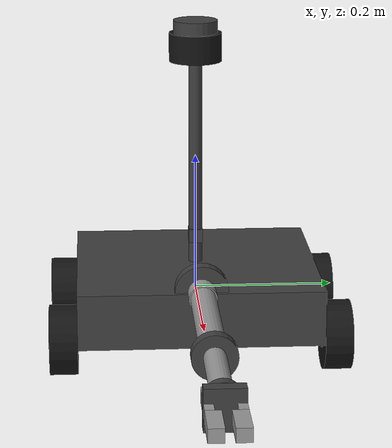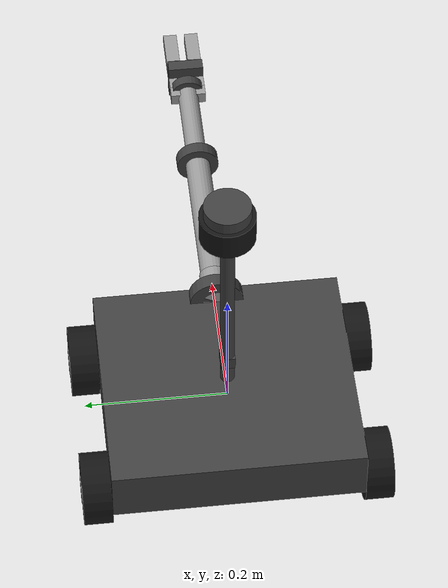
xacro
<?xml version="1.0"?>
<robot name="orion"
       xmlns:xacro="http://www.ros.org/wiki/xacro"
       xmlns:gz="http://gazebosim.org/schema">
  <xacro:arg name="controllers_file" default="config/ros2_controllers.yaml"/>

<!--CONSTANTS-->
  <xacro:property name="base_x"    value="0.320"/>
  <xacro:property name="base_y"    value="0.350"/>
  <xacro:property name="base_z"    value="0.080"/>
  <xacro:property name="base_mass" value="3.5"/>

  <xacro:property name="wheel_radius" value="0.050"/>
  <xacro:property name="wheel_width"  value="0.040"/>
  <xacro:property name="wheel_mass"   value="0.3"/>
  <xacro:property name="wheel_x_off"  value="0.112"/>
  <xacro:property name="wheel_y_off"  value="0.195"/>
  <xacro:property name="wheel_z_off"  value="${-base_z/2.0}"/>
  <xacro:property name="wheel_mu"     value="1.0"/>
  <xacro:property name="wheel_mu2"    value="0.001"/>

  <xacro:property name="mast_r"  value="0.010"/>
  <xacro:property name="mast_h"  value="0.300"/>
  <xacro:property name="mast_x"  value="0.000"/>
  <xacro:property name="mast_y"  value="0.000"/>
  <xacro:property name="lidar_r" value="0.038"/>
  <xacro:property name="lidar_h" value="0.041"/>
  <xacro:property name="lidar_m" value="0.185"/>
  <xacro:property name="imu_xyz" value="0.02"/>
  <xacro:property name="shoulder_mount_x" value="${base_x/2.0 - r_shoulder - 0.006}"/>
  <xacro:property name="shoulder_mount_z" value="${base_z/2.0}"/>

  <xacro:property name="shoulder_h"   value="0.050"/>
  <xacro:property name="upper_arm_l"  value="0.220"/>
  <xacro:property name="forearm_l"    value="0.145"/>
  <xacro:property name="gripper_l"    value="0.055"/>
  <xacro:property name="gripper_tcp"  value="0.050"/>

  <xacro:property name="r_shoulder"  value="0.020"/>
  <xacro:property name="r_upper_arm" value="0.018"/>
  <xacro:property name="r_forearm"   value="0.015"/>
  <xacro:property name="r_gripper"   value="0.012"/>

  <xacro:property name="m_shoulder"  value="0.300"/>
  <xacro:property name="m_upper_arm" value="0.308"/>
  <xacro:property name="m_forearm"   value="0.199"/>
  <xacro:property name="m_gripper"   value="0.120"/>

  <xacro:property name="shoulder_lo"  value="-1.58"/>
  <xacro:property name="shoulder_hi"  value="0.79"/>
  <xacro:property name="elbow_lo"     value="-0.25"/>
  <xacro:property name="elbow_hi"     value=" 1.57"/>
  <xacro:property name="wrist_lo"     value=" 0.00"/>
  <xacro:property name="wrist_hi"     value=" 2.70"/>

  <xacro:property name="gp_lo"  value="-1.57"/>
  <xacro:property name="gp_hi"  value=" 1.57"/>
  <xacro:property name="gy_lo"  value="-1.57"/>
  <xacro:property name="gy_hi"  value=" 1.57"/>
  <xacro:property name="gr_lo"  value="-1.57"/>
  <xacro:property name="gr_hi"  value=" 1.57"/>

  <xacro:property name="shoulder_damp"  value="0.08"/>  <xacro:property name="shoulder_fric" value="0.10"/>
  <xacro:property name="elbow_damp"     value="0.06"/>  <xacro:property name="elbow_fric"    value="0.08"/>
  <xacro:property name="wrist_damp"     value="0.04"/>  <xacro:property name="wrist_fric"    value="0.06"/>
  <xacro:property name="gripper_damp"   value="0.02"/>  <xacro:property name="gripper_fric"  value="0.03"/>

  <xacro:property name="arm_effort"    value="5.0"/>
  <xacro:property name="arm_vel"       value="1.0"/>
  <xacro:property name="gripper_effort" value="5.0"/>
  <xacro:property name="gripper_vel"    value="0.10"/>
  <xacro:property name="gripper_stroke" value="0.025"/>

  <xacro:property name="finger_w"         value="0.012"/>
  <xacro:property name="finger_h"         value="0.018"/>
  <xacro:property name="finger_jaw_l"     value="0.055"/>
  <xacro:property name="finger_jaw_w"     value="0.020"/>
  <xacro:property name="finger_bracket_l" value="0.018"/>
  <xacro:property name="finger_bracket_w" value="0.028"/>

<!--colours-->
  <material name="grey">      <color rgba="0.60 0.60 0.60 1.0"/></material>
  <material name="dark_grey"> <color rgba="0.25 0.25 0.25 1.0"/></material>
  <material name="black">     <color rgba="0.08 0.08 0.08 1.0"/></material>
  <material name="white">     <color rgba="0.90 0.90 0.90 1.0"/></material>
  <material name="red">       <color rgba="0.80 0.10 0.10 1.0"/></material>
  <material name="blue">      <color rgba="0.10 0.10 0.80 1.0"/></material>
  <material name="green">     <color rgba="0.10 0.70 0.10 1.0"/></material>
  <material name="orange">    <color rgba="1.00 0.45 0.00 1.0"/></material>
  <material name="yellow">    <color rgba="1.00 0.85 0.00 1.0"/></material>

  <xacro:macro name="gz_material" params="link gz_mat">
    <gazebo reference="${link}">
      <material>${gz_mat}</material>
    </gazebo>
  </xacro:macro>

<!--inertia macro-->
  <xacro:macro name="inertia_cyl_z" params="m r l">
    <inertial>
      <mass value="${m}"/>
      <origin xyz="0 0 ${l/2.0}" rpy="0 0 0"/>
      <inertia
        ixx="${(1.0/12.0)*m*(3.0*r*r + l*l)}"
        iyy="${(1.0/12.0)*m*(3.0*r*r + l*l)}"
        izz="${0.5*m*r*r}"
        ixy="0" ixz="0" iyz="0"/>
    </inertial>
  </xacro:macro>

  <xacro:macro name="inertia_cyl_x" params="m r l">
    <inertial>
      <mass value="${m}"/>
      <origin xyz="${l/2.0} 0 0" rpy="0 0 0"/>
      <inertia
        ixx="${0.5*m*r*r}"
        iyy="${(1.0/12.0)*m*(3.0*r*r + l*l)}"
        izz="${(1.0/12.0)*m*(3.0*r*r + l*l)}"
        ixy="0" ixz="0" iyz="0"/>
    </inertial>
  </xacro:macro>

  <xacro:macro name="inertia_box" params="m x y z ox oy oz">
    <inertial>
      <mass value="${m}"/>
      <origin xyz="${ox} ${oy} ${oz}" rpy="0 0 0"/>
      <inertia
        ixx="${(1.0/12.0)*m*(y*y+z*z)}"
        iyy="${(1.0/12.0)*m*(x*x+z*z)}"
        izz="${(1.0/12.0)*m*(x*x+y*y)}"
        ixy="0" ixz="0" iyz="0"/>
    </inertial>
  </xacro:macro>

  <xacro:macro name="inertia_point" params="m">
    <inertial>
      <mass value="${m}"/>
      <origin xyz="0 0 0" rpy="0 0 0"/>
      <inertia ixx="1e-6" iyy="1e-6" izz="1e-6" ixy="0" ixz="0" iyz="0"/>
    </inertial>
  </xacro:macro>

<!--base macros-->
  <xacro:macro name="base">
    <link name="base_link">

      <!-- outer shell -->
      <visual>
        <origin xyz="0 0 0" rpy="0 0 0"/>
        <geometry><box size="${base_x} ${base_y} ${base_z}"/></geometry>
        <material name="dark_grey"/>
      </visual>
      <!-- upper plate -->
      <visual>
        <origin xyz="0 0 ${base_z/2.0 - 0.004}" rpy="0 0 0"/>
        <geometry><box size="${base_x - 0.006} ${base_y - 0.006} 0.006"/></geometry>
        <material name="grey"/>
      </visual>
      <!-- battery layer -->
      <visual>
        <origin xyz="-0.050 0 ${-base_z/2.0 + 0.0175}" rpy="0 0 0"/>
        <geometry><box size="${base_x*0.55} ${base_y - 0.030} 0.033"/></geometry>
        <material name="black"/>
      </visual>
      <!-- motor driver layer -->
      <visual>
        <origin xyz="-0.04 0 ${-base_z/2.0 + 0.048}" rpy="0 0 0"/>
        <geometry><box size="${base_x*0.45} ${base_y - 0.030} 0.018"/></geometry>
        <material name="dark_grey"/>
      </visual>
      <!-- power layer -->
      <visual>
        <origin xyz="0 0 ${-base_z/2.0 + 0.068}" rpy="0 0 0"/>
        <geometry><box size="${base_x - 0.020} ${base_y - 0.030} 0.016"/></geometry>
        <material name="dark_grey"/>
      </visual>
      <!--pi pcb-->
      <visual>
        <origin xyz="-0.07 0.03 ${-base_z/2.0 + 0.060}" rpy="0 0 0"/>
        <geometry><box size="0.085 0.056 0.004"/></geometry>
        <material name="green"/>
      </visual>

      <collision>
        <origin xyz="0 0 0" rpy="0 0 0"/>
        <geometry><box size="${base_x} ${base_y} ${base_z}"/></geometry>
      </collision>

      <inertial>
        <mass value="${base_mass}"/>
        <origin xyz="-0.056 0 0" rpy="0 0 0"/>
        <inertia
          ixx="${(1.0/12.0)*base_mass*(base_y*base_y + base_z*base_z)}"
          iyy="${(1.0/12.0)*base_mass*(base_x*base_x + base_z*base_z)}"
          izz="${(1.0/12.0)*base_mass*(base_x*base_x + base_y*base_y)}"
          ixy="0" ixz="0" iyz="0"/>
      </inertial>
    </link>

    <gazebo reference="base_link">
      <collision>
        <surface>
          <friction><ode><mu>0.0</mu><mu2>0.0</mu2></ode></friction>
        </surface>
      </collision>
    </gazebo>

    <gazebo>
      <plugin filename="libgz_ros2_control-system.so"
              name="gz_ros2_control::GazeboSimROS2ControlPlugin">
        <parameters>$(arg controllers_file)</parameters>
        <robot_param>robot_description</robot_param>
        <robot_param_node>robot_state_publisher</robot_param_node>
      </plugin>
    </gazebo>
  </xacro:macro>

<!--mecanum wheel macro-->
  <xacro:macro name="mecanum_wheel" params="name x_sign y_sign fdir1_y mu_val">
    <link name="${name}_wheel_link">
      <visual>
        <origin xyz="0 0 0" rpy="${pi/2} 0 0"/>
        <geometry><cylinder radius="${wheel_radius}" length="${wheel_width}"/></geometry>
        <material name="black"/>
      </visual>
      <visual>
        <origin xyz="0 0 0" rpy="${pi/2} 0 0"/>
        <geometry><cylinder radius="${wheel_radius*0.38}" length="${wheel_width+0.002}"/></geometry>
        <material name="grey"/>
      </visual>
      <collision>
        <origin xyz="0 0 0" rpy="0 0 0"/>
        <geometry><sphere radius="${wheel_radius}"/></geometry>
      </collision>
      <inertial>
        <mass value="${wheel_mass}"/>
        <origin xyz="0 0 0"/>
        <inertia
          ixx="${(1.0/12.0)*wheel_mass*(3.0*wheel_radius*wheel_radius + wheel_width*wheel_width)}"
          iyy="${0.5*wheel_mass*wheel_radius*wheel_radius}"
          izz="${(1.0/12.0)*wheel_mass*(3.0*wheel_radius*wheel_radius + wheel_width*wheel_width)}"
          ixy="0" ixz="0" iyz="0"/>
      </inertial>
    </link>

    <joint name="${name}_wheel_joint" type="continuous">
      <parent link="base_link"/>
      <child  link="${name}_wheel_link"/>
      <origin xyz="${x_sign*wheel_x_off} ${y_sign*wheel_y_off} ${wheel_z_off}" rpy="0 0 0"/>
      <axis xyz="0 1 0"/>
      <dynamics damping="0.01" friction="0.01"/>
    </joint>

    <gazebo reference="${name}_wheel_link">
      <collision>
        <surface>
          <friction>
            <ode>
              <mu>${mu_val}</mu>
              <mu2>${wheel_mu2}</mu2>
              <fdir1 gz:expressed_in="base_link">1 ${fdir1_y} 0</fdir1>
            </ode>
          </friction>
          <contact>
            <ode>
              <kp>500000.0</kp>
              <kd>100.0</kd>
              <min_depth>0.001</min_depth>
              <max_vel>0.1</max_vel>
            </ode>
          </contact>
        </surface>
      </collision>
    </gazebo>
  </xacro:macro>

  <xacro:macro name="wheels">
    <xacro:mecanum_wheel name="front_left"  x_sign=" 1" y_sign=" 1" fdir1_y=" 1" mu_val="1.0"/>
    <xacro:mecanum_wheel name="front_right" x_sign=" 1" y_sign="-1" fdir1_y="-1" mu_val="1.0"/>
    <xacro:mecanum_wheel name="rear_left"   x_sign="-1" y_sign=" 1" fdir1_y="-1" mu_val="1.0"/>
    <xacro:mecanum_wheel name="rear_right"  x_sign="-1" y_sign="-1" fdir1_y=" 1" mu_val="1.0"/>
  </xacro:macro>

  <!--sensor macros-->
  <xacro:macro name="sensors">

    <!-- lidar mast -->
    <link name="lidar_mast_link">
      <visual>
        <origin xyz="0 0 ${mast_h/2.0}" rpy="0 0 0"/>
        <geometry><cylinder radius="${mast_r}" length="${mast_h}"/></geometry>
        <material name="dark_grey"/>
      </visual>
      <collision>
        <origin xyz="0 0 ${mast_h/2.0}" rpy="0 0 0"/>
        <geometry><cylinder radius="${mast_r}" length="${mast_h}"/></geometry>
      </collision>
      <inertial>
        <mass value="0.080"/>
        <origin xyz="0 0 ${mast_h/2.0}" rpy="0 0 0"/>
        <inertia
          ixx="${(1.0/12.0)*0.080*(3.0*mast_r*mast_r + mast_h*mast_h)}"
          iyy="${(1.0/12.0)*0.080*(3.0*mast_r*mast_r + mast_h*mast_h)}"
          izz="${0.5*0.080*mast_r*mast_r}"
          ixy="0" ixz="0" iyz="0"/>
      </inertial>
    </link>

    <joint name="lidar_mast_joint" type="fixed">
      <parent link="base_link"/>
      <child  link="lidar_mast_link"/>
      <origin xyz="${mast_x} ${mast_y} ${base_z/2.0}" rpy="0 0 0"/>
    </joint>

    <!--lidar-->
    <link name="lidar_link">
      <visual>
        <origin xyz="0 0 ${lidar_h/2.0}" rpy="0 0 0"/>
        <geometry><cylinder radius="${lidar_r}" length="${lidar_h}"/></geometry>
        <material name="black"/>
      </visual>
      <visual>
        <origin xyz="0 0 ${lidar_h + 0.009}" rpy="0 0 0"/>
        <geometry><cylinder radius="${lidar_r - 0.006}" length="0.018"/></geometry>
        <material name="dark_grey"/>
      </visual>
      <visual>
        <origin xyz="${lidar_r - 0.003} 0 ${lidar_h/2.0}" rpy="0 0 0"/>
        <geometry><box size="0.004 0.012 ${lidar_h*0.5}"/></geometry>
        <material name="blue"/>
      </visual>
      <collision>
        <origin xyz="0 0 ${lidar_h/2.0}" rpy="0 0 0"/>
        <geometry><cylinder radius="${lidar_r}" length="${lidar_h}"/></geometry>
      </collision>
      <inertial>
        <mass value="${lidar_m}"/>
        <origin xyz="0 0 ${lidar_h/2.0}" rpy="0 0 0"/>
        <inertia
          ixx="${(1.0/12.0)*lidar_m*(3.0*lidar_r*lidar_r + lidar_h*lidar_h)}"
          iyy="${(1.0/12.0)*lidar_m*(3.0*lidar_r*lidar_r + lidar_h*lidar_h)}"
          izz="${0.5*lidar_m*lidar_r*lidar_r}"
          ixy="0" ixz="0" iyz="0"/>
      </inertial>
    </link>

    <joint name="lidar_joint" type="fixed">
      <parent link="lidar_mast_link"/>
      <child  link="lidar_link"/>
      <origin xyz="0 0 ${mast_h}" rpy="0 0 0"/>
    </joint>

    <gazebo reference="lidar_link">
      <sensor name="lidar" type="gpu_lidar">
        <topic>scan</topic>
        <update_rate>10</update_rate>
        <lidar>
          <scan>
            <horizontal>
              <samples>360</samples>
              <resolution>1</resolution>
              <min_angle>-3.14159</min_angle>
              <max_angle> 3.14159</max_angle>
            </horizontal>
          </scan>
          <range>
            <min>0.12</min>
            <max>12.0</max>
            <resolution>0.01</resolution>
          </range>
          <noise><type>gaussian</type><mean>0.0</mean><stddev>0.01</stddev></noise>
        </lidar>
        <always_on>true</always_on>
        <visualize>false</visualize>
        <gz_frame_id>lidar_link</gz_frame_id>
      </sensor>
    </gazebo>

    <!-- IMU -->
    <link name="imu_link">
      <visual>
        <origin xyz="0 0 0"/>
        <geometry><box size="${imu_xyz} ${imu_xyz} ${imu_xyz}"/></geometry>
        <material name="dark_grey"/>
      </visual>
      <inertial>
        <mass value="0.05"/>
        <origin xyz="0 0 0"/>
        <inertia ixx="0.001" iyy="0.001" izz="0.001" ixy="0" ixz="0" iyz="0"/>
      </inertial>
    </link>

    <joint name="imu_joint" type="fixed">
      <parent link="base_link"/>
      <child  link="imu_link"/>
      <origin xyz="0 0 ${base_z}" rpy="0 0 0"/>
    </joint>

    <gazebo reference="imu_link">
      <sensor name="imu" type="imu">
        <topic>imu/data</topic>
        <update_rate>100</update_rate>
        <always_on>true</always_on>
        <imu>
          <angular_velocity>
            <x><noise type="gaussian"><mean>0</mean><stddev>0.009</stddev></noise></x>
            <y><noise type="gaussian"><mean>0</mean><stddev>0.009</stddev></noise></y>
            <z><noise type="gaussian"><mean>0</mean><stddev>0.009</stddev></noise></z>
          </angular_velocity>
          <linear_acceleration>
            <x><noise type="gaussian"><mean>0</mean><stddev>0.021</stddev></noise></x>
            <y><noise type="gaussian"><mean>0</mean><stddev>0.021</stddev></noise></y>
            <z><noise type="gaussian"><mean>0</mean><stddev>0.021</stddev></noise></z>
          </linear_acceleration>
        </imu>
        <gz_frame_id>imu_link</gz_frame_id>
      </sensor>
    </gazebo>

  </xacro:macro>

  <!--arm marco-->
  <xacro:macro name="arm">
    <link name="shoulder_link">
      <visual>
        <origin xyz="${shoulder_h/2.0} 0 0" rpy="0 ${pi/2} 0"/>
        <geometry><cylinder radius="${r_shoulder}" length="${shoulder_h}"/></geometry>
        <material name="grey"/>
      </visual>
      <visual>
        <origin xyz="0.010 0 0" rpy="0 ${pi/2} 0"/>
        <geometry><cylinder radius="${r_shoulder*1.9}" length="0.020"/></geometry>
        <material name="dark_grey"/>
      </visual>
      <collision>
        <origin xyz="${shoulder_h/2.0} 0 0" rpy="0 ${pi/2} 0"/>
        <geometry><cylinder radius="${r_shoulder}" length="${shoulder_h}"/></geometry>
      </collision>
      <xacro:inertia_cyl_x m="${m_shoulder}" r="${r_shoulder}" l="${shoulder_h}"/>
    </link>

    <joint name="shoulder_joint" type="revolute">
      <parent link="base_link"/>
      <child  link="shoulder_link"/>
      <origin xyz="${shoulder_mount_x} 0 ${shoulder_mount_z}" rpy="0 0 0"/>
      <axis xyz="0 1 0"/>
      <limit lower="${shoulder_lo}" upper="${shoulder_hi}"
             effort="${arm_effort}" velocity="${arm_vel}"/>
      <dynamics damping="${shoulder_damp}" friction="${shoulder_fric}"/>
    </joint>

    <link name="upper_arm_link">
      <visual>
        <origin xyz="${upper_arm_l/2.0} 0 0" rpy="0 ${pi/2} 0"/>
        <geometry><cylinder radius="${r_upper_arm}" length="${upper_arm_l}"/></geometry>
        <material name="grey"/>
      </visual>
      <visual>
        <origin xyz="${upper_arm_l} 0 0" rpy="0 ${pi/2} 0"/>
        <geometry><cylinder radius="${r_upper_arm*1.7}" length="0.018"/></geometry>
        <material name="dark_grey"/>
      </visual>
      <collision>
        <origin xyz="${upper_arm_l/2.0} 0 0" rpy="0 ${pi/2} 0"/>
        <geometry><cylinder radius="${r_upper_arm}" length="${upper_arm_l}"/></geometry>
      </collision>
      <xacro:inertia_cyl_x m="${m_upper_arm}" r="${r_upper_arm}" l="${upper_arm_l}"/>
    </link>

    <joint name="elbow_joint" type="revolute">
      <parent link="shoulder_link"/>
      <child  link="upper_arm_link"/>
      <origin xyz="${shoulder_h} 0 0" rpy="0 0 0"/>
      <axis xyz="0 1 0"/>
      <limit lower="${elbow_lo}" upper="${elbow_hi}"
             effort="${arm_effort}" velocity="${arm_vel}"/>
      <dynamics damping="${elbow_damp}" friction="${elbow_fric}"/>
    </joint>

    <link name="forearm_link">
      <visual>
        <origin xyz="${forearm_l/2.0} 0 0" rpy="0 ${pi/2} 0"/>
        <geometry><cylinder radius="${r_forearm}" length="${forearm_l}"/></geometry>
        <material name="grey"/>
      </visual>
      <visual>
        <origin xyz="${forearm_l} 0 0" rpy="0 ${pi/2} 0"/>
        <geometry><cylinder radius="${r_forearm*1.6}" length="0.015"/></geometry>
        <material name="dark_grey"/>
      </visual>
      <collision>
        <origin xyz="${forearm_l/2.0} 0 0" rpy="0 ${pi/2} 0"/>
        <geometry><cylinder radius="${r_forearm}" length="${forearm_l}"/></geometry>
      </collision>
      <xacro:inertia_cyl_x m="${m_forearm}" r="${r_forearm}" l="${forearm_l}"/>
    </link>

    <joint name="wrist_joint" type="revolute">
      <parent link="upper_arm_link"/>
      <child  link="forearm_link"/>
      <origin xyz="${upper_arm_l} 0 0" rpy="0 0 0"/>
      <axis xyz="0 1 0"/>
      <limit lower="${wrist_lo}" upper="${wrist_hi}"
             effort="${arm_effort}" velocity="${arm_vel}"/>
      <dynamics damping="${wrist_damp}" friction="${wrist_fric}"/>
    </joint>

    <link name="gripper_pitch_link">
      <xacro:inertia_point m="0.001"/>
    </link>

    <joint name="gripper_pitch_joint" type="revolute">
      <parent link="forearm_link"/>
      <child  link="gripper_pitch_link"/>
      <origin xyz="${forearm_l} 0 0" rpy="0 0 0"/>
      <axis xyz="0 1 0"/>
      <limit lower="${gp_lo}" upper="${gp_hi}"
             effort="${arm_effort}" velocity="${arm_vel}"/>
      <dynamics damping="${gripper_damp}" friction="${gripper_fric}"/>
    </joint>

    <link name="gripper_yaw_link">
      <xacro:inertia_point m="0.001"/>
    </link>

    <joint name="gripper_yaw_joint" type="revolute">
      <parent link="gripper_pitch_link"/>
      <child  link="gripper_yaw_link"/>
      <origin xyz="0 0 0" rpy="0 0 0"/>
      <axis xyz="0 0 1"/>
      <limit lower="${gy_lo}" upper="${gy_hi}"
             effort="${arm_effort}" velocity="${arm_vel}"/>
      <dynamics damping="${gripper_damp}" friction="${gripper_fric}"/>
    </joint>

    <link name="gripper_roll_link">
      <xacro:inertia_point m="0.001"/>
    </link>

    <joint name="gripper_roll_joint" type="revolute">
      <parent link="gripper_yaw_link"/>
      <child  link="gripper_roll_link"/>
      <origin xyz="0 0 0" rpy="0 0 0"/>
      <axis xyz="1 0 0"/>
      <limit lower="${gr_lo}" upper="${gr_hi}"
             effort="${arm_effort}" velocity="${arm_vel}"/>
      <dynamics damping="${gripper_damp}" friction="${gripper_fric}"/>
    </joint>

    <link name="gripper_base_link">
      <visual>
        <origin xyz="${gripper_l/2.0} 0 0" rpy="0 ${pi/2} 0"/>
        <geometry><box size="${gripper_l} 0.052 0.018"/></geometry>
        <material name="dark_grey"/>
      </visual>
      <collision>
        <origin xyz="${gripper_l/2.0} 0 0" rpy="0 ${pi/2} 0"/>
        <geometry><box size="${gripper_l} 0.052 0.018"/></geometry>
      </collision>
      <xacro:inertia_box m="${m_gripper*0.5}" x="${gripper_l}" y="0.052" z="0.018"
                         ox="${gripper_l/2.0}" oy="0" oz="0"/>
    </link>
    <joint name="gripper_base_joint" type="fixed">
      <parent link="gripper_roll_link"/>
      <child  link="gripper_base_link"/>
      <origin xyz="0 0 0" rpy="0 0 0"/>
    </joint>
    <link name="gripper_left_link">
      <visual>
        <origin xyz="${gripper_l/2.0} 0 0" rpy="0 0 0"/>
        <geometry><box size="${gripper_l} ${finger_w} ${finger_h}"/></geometry>
        <material name="grey"/>
      </visual>
      <collision>
        <origin xyz="${gripper_l/2.0} 0 0" rpy="0 0 0"/>
        <geometry><box size="${gripper_l} ${finger_w} ${finger_h}"/></geometry>
      </collision>
      <visual>
        <origin xyz="${gripper_l + finger_jaw_l/2.0} ${-(finger_jaw_w - finger_w)/2.0} 0" rpy="0 0 0"/>
        <geometry><box size="${finger_jaw_l} ${finger_jaw_w} ${finger_h}"/></geometry>
        <material name="grey"/>
      </visual>
      <collision>
        <origin xyz="${gripper_l + finger_jaw_l/2.0} ${-(finger_jaw_w - finger_w)/2.0} 0" rpy="0 0 0"/>
        <geometry><box size="${finger_jaw_l} ${finger_jaw_w} ${finger_h}"/></geometry>
      </collision>
      <visual>
        <origin xyz="${-finger_bracket_l/2.0} ${-(finger_bracket_w - finger_w)/2.0} 0" rpy="0 0 0"/>
        <geometry><box size="${finger_bracket_l} ${finger_bracket_w} ${finger_h}"/></geometry>
        <material name="grey"/>
      </visual>
      <collision>
        <origin xyz="${-finger_bracket_l/2.0} ${-(finger_bracket_w - finger_w)/2.0} 0" rpy="0 0 0"/>
        <geometry><box size="${finger_bracket_l} ${finger_bracket_w} ${finger_h}"/></geometry>
      </collision>
      <xacro:inertia_box m="${m_gripper*0.25}" x="${gripper_l + finger_jaw_l}" y="${finger_jaw_w}" z="${finger_h}"
                         ox="${(gripper_l + finger_jaw_l)/2.0}" oy="0" oz="0"/>
    </link>

    <joint name="gripper_left_joint" type="prismatic">
      <parent link="gripper_base_link"/>
      <child  link="gripper_left_link"/>
      <origin xyz="0 ${0.052/2.0 - finger_w/2.0} 0" rpy="0 0 0"/>
      <axis xyz="0 1 0"/>
      <limit lower="0.0" upper="${gripper_stroke}"
             effort="${gripper_effort}" velocity="${gripper_vel}"/>
      <dynamics damping="0.01" friction="0.01"/>
    </joint>

    <link name="gripper_right_link">
      <visual>
        <origin xyz="${gripper_l/2.0} 0 0" rpy="0 0 0"/>
        <geometry><box size="${gripper_l} ${finger_w} ${finger_h}"/></geometry>
        <material name="grey"/>
      </visual>
      <collision>
        <origin xyz="${gripper_l/2.0} 0 0" rpy="0 0 0"/>
        <geometry><box size="${gripper_l} ${finger_w} ${finger_h}"/></geometry>
      </collision>
      <visual>
        <origin xyz="${gripper_l + finger_jaw_l/2.0} ${(finger_jaw_w - finger_w)/2.0} 0" rpy="0 0 0"/>
        <geometry><box size="${finger_jaw_l} ${finger_jaw_w} ${finger_h}"/></geometry>
        <material name="grey"/>
      </visual>
      <collision>
        <origin xyz="${gripper_l + finger_jaw_l/2.0} ${(finger_jaw_w - finger_w)/2.0} 0" rpy="0 0 0"/>
        <geometry><box size="${finger_jaw_l} ${finger_jaw_w} ${finger_h}"/></geometry>
      </collision>
      <visual>
        <origin xyz="${-finger_bracket_l/2.0} ${(finger_bracket_w - finger_w)/2.0} 0" rpy="0 0 0"/>
        <geometry><box size="${finger_bracket_l} ${finger_bracket_w} ${finger_h}"/></geometry>
        <material name="grey"/>
      </visual>
      <collision>
        <origin xyz="${-finger_bracket_l/2.0} ${(finger_bracket_w - finger_w)/2.0} 0" rpy="0 0 0"/>
        <geometry><box size="${finger_bracket_l} ${finger_bracket_w} ${finger_h}"/></geometry>
      </collision>
      <xacro:inertia_box m="${m_gripper*0.25}" x="${gripper_l + finger_jaw_l}" y="${finger_jaw_w}" z="${finger_h}"
                         ox="${(gripper_l + finger_jaw_l)/2.0}" oy="0" oz="0"/>
    </link>

    <joint name="gripper_right_joint" type="prismatic">
      <parent link="gripper_base_link"/>
      <child  link="gripper_right_link"/>
      <origin xyz="0 ${-(0.052/2.0 - finger_w/2.0)} 0" rpy="0 0 0"/>
      <axis xyz="0 1 0"/>
      <limit lower="${-gripper_stroke}" upper="0.0"
             effort="${gripper_effort}" velocity="${gripper_vel}"/>
      <dynamics damping="0.01" friction="0.01"/>
      <mimic joint="gripper_left_joint" multiplier="-1" offset="0"/>
    </joint>

    <link name="tcp_link"/>
    <joint name="tcp_joint" type="fixed">
      <parent link="gripper_base_link"/>
      <child  link="tcp_link"/>
      <origin xyz="${gripper_tcp} 0 0" rpy="0 0 0"/>
    </joint>

  </xacro:macro>

  <!--ros2_control-->
  <ros2_control name="OrionSystem" type="system">
    <hardware>
      <plugin>gz_ros2_control/GazeboSimSystem</plugin>
    </hardware>

    <joint name="front_left_wheel_joint">
      <command_interface name="velocity"><param name="min">-50.0</param><param name="max">50.0</param></command_interface>
      <state_interface name="position"/><state_interface name="velocity"/>
    </joint>
    <joint name="front_right_wheel_joint">
      <command_interface name="velocity"><param name="min">-50.0</param><param name="max">50.0</param></command_interface>
      <state_interface name="position"/><state_interface name="velocity"/>
    </joint>
    <joint name="rear_left_wheel_joint">
      <command_interface name="velocity"><param name="min">-50.0</param><param name="max">50.0</param></command_interface>
      <state_interface name="position"/><state_interface name="velocity"/>
    </joint>
    <joint name="rear_right_wheel_joint">
      <command_interface name="velocity"><param name="min">-50.0</param><param name="max">50.0</param></command_interface>
      <state_interface name="position"/><state_interface name="velocity"/>
    </joint>

    <joint name="shoulder_joint">
      <command_interface name="position"><param name="min">${shoulder_lo}</param><param name="max">${shoulder_hi}</param></command_interface>
      <command_interface name="effort"><param name="min">-${arm_effort}</param><param name="max">${arm_effort}</param></command_interface>
      <state_interface name="position"/><state_interface name="velocity"/><state_interface name="effort"/>
    </joint>
    <joint name="elbow_joint">
      <command_interface name="position"><param name="min">${elbow_lo}</param><param name="max">${elbow_hi}</param></command_interface>
      <command_interface name="effort"><param name="min">-${arm_effort}</param><param name="max">${arm_effort}</param></command_interface>
      <state_interface name="position"/><state_interface name="velocity"/><state_interface name="effort"/>
    </joint>
    <joint name="wrist_joint">
      <command_interface name="position"><param name="min">${wrist_lo}</param><param name="max">${wrist_hi}</param></command_interface>
      <command_interface name="effort"><param name="min">-${arm_effort}</param><param name="max">${arm_effort}</param></command_interface>
      <state_interface name="position"/><state_interface name="velocity"/><state_interface name="effort"/>
    </joint>

    <joint name="gripper_pitch_joint">
      <command_interface name="position"><param name="min">${gp_lo}</param><param name="max">${gp_hi}</param></command_interface>
      <command_interface name="effort"><param name="min">-${arm_effort}</param><param name="max">${arm_effort}</param></command_interface>
      <state_interface name="position"/><state_interface name="velocity"/><state_interface name="effort"/>
    </joint>
    <joint name="gripper_yaw_joint">
      <command_interface name="position"><param name="min">${gy_lo}</param><param name="max">${gy_hi}</param></command_interface>
      <command_interface name="effort"><param name="min">-${arm_effort}</param><param name="max">${arm_effort}</param></command_interface>
      <state_interface name="position"/><state_interface name="velocity"/><state_interface name="effort"/>
    </joint>
    <joint name="gripper_roll_joint">
      <command_interface name="position"><param name="min">${gr_lo}</param><param name="max">${gr_hi}</param></command_interface>
      <command_interface name="effort"><param name="min">-${arm_effort}</param><param name="max">${arm_effort}</param></command_interface>
      <state_interface name="position"/><state_interface name="velocity"/><state_interface name="effort"/>
    </joint>

    <joint name="gripper_left_joint">
      <command_interface name="position"><param name="min">0.0</param><param name="max">${gripper_stroke}</param></command_interface>
      <state_interface name="position"/><state_interface name="velocity"/>
    </joint>
    <joint name="gripper_right_joint">
      <param name="mimic">gripper_left_joint</param>
      <param name="multiplier">-1</param>
      <state_interface name="position"/><state_interface name="velocity"/>
    </joint>

  </ros2_control>

  <!--Call-->
  <xacro:base/>
  <xacro:wheels/>
  <xacro:sensors/>
  <xacro:arm/>

</robot>
